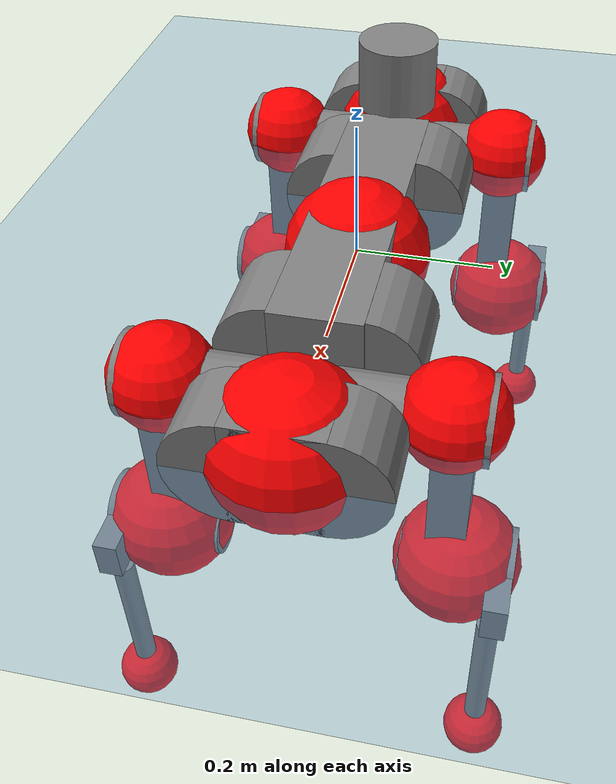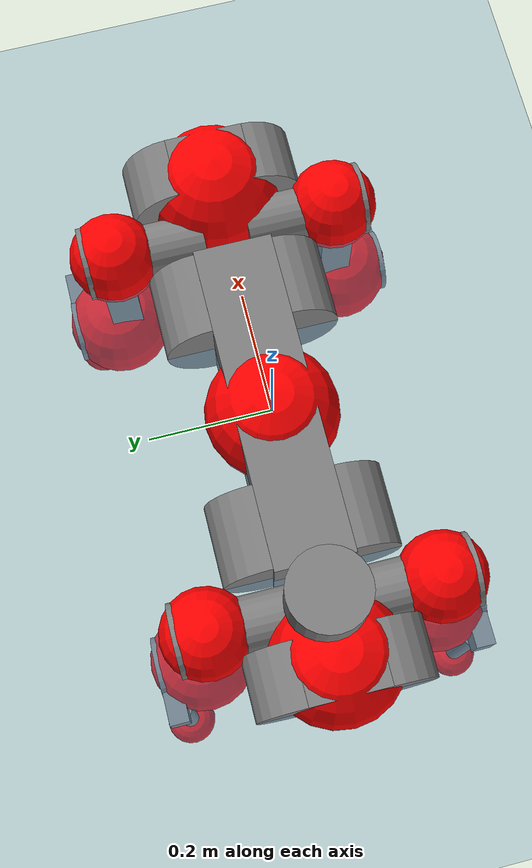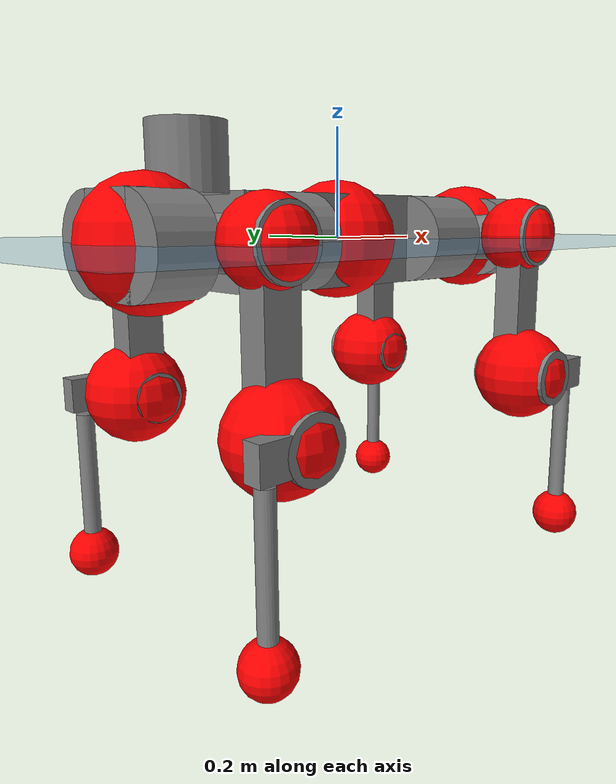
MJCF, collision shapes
<mujoco model="anymal_c">
  <compiler angle="radian" assetdir="assets" balanceinertia="true" inertiafromgeom="false"/>

  <option timestep="0.005" density="1.2" viscosity="2e-05"/>

  <size nkey="1"/>

  <visual>
    <quality shadowsize="8192"/>
    <map shadowclip="0.5"/>
  </visual>

  <default>
    <default class="/">
      <material specular="0" shininess="0.25"/>
      <geom contype="0" conaffinity="0" group="1" solref="-1000 -80"/>
      <site size="0.01 0.005 0.005" group="5"/>
      <general forcelimited="true" forcerange="-80 80" biastype="affine" gainprm="80" biasprm="0 -80 -2"/>
      <default class="anymal_c">
        <joint armature="0.01" damping="0.01" frictionloss="0.1"/>
        <default class="visual">
          <geom type="mesh" group="2"/>
          <default class="visual_zflip"/>
        </default>
        <default class="collision">
          <geom type="cylinder" group="3"/>
          <default class="foot">
            <geom size="0.03 0 0" type="sphere" condim="6" priority="1" friction="0.8 0.02 0.01" solimp="0.015 1 0.03"/>
          </default>
        </default>
      </default>
      <default class="reward_collision_sphere">
        <geom group="5" rgba="1 0 0 1"/>
      </default>
    </default>
  </default>

  <asset>
    <texture type="skybox" colorspace="auto" name="//unnamed_texture_0" builtin="gradient" rgb1="0.95 0.95 0.95" rgb2="0.95 0.95 0.95" width="100" height="600"/>
    <texture type="2d" colorspace="auto" name="texplane" builtin="checker" rgb1="0.345 0.575 0.748" rgb2="0.345 0.575 0.748" markrgb="1 1 1" width="512" height="512"/>
    <texture type="2d" colorspace="linear" name="base" file="base.png"/>
    <texture type="2d" colorspace="linear" name="top_shell" file="top_shell.png"/>
    <texture type="2d" colorspace="linear" name="bottom_shell" file="bottom_shell.png"/>
    <texture type="2d" colorspace="linear" name="remote" file="remote.png"/>
    <texture type="2d" colorspace="linear" name="hatch" file="hatch.png"/>
    <texture type="2d" colorspace="linear" name="handle" file="handle.png"/>
    <texture type="2d" colorspace="linear" name="face" file="face.png"/>
    <texture type="2d" colorspace="linear" name="battery" file="battery.png"/>
    <texture type="2d" colorspace="linear" name="lidar_cage" file="lidar_cage.png"/>
    <texture type="2d" colorspace="linear" name="depth_camera" file="depth_camera.png"/>
    <texture type="2d" colorspace="linear" name="wide_angle_camera" file="wide_angle_camera.png"/>
    <texture type="2d" colorspace="linear" name="lidar" file="lidar.png"/>
    <texture type="2d" colorspace="linear" name="drive" file="drive.png"/>
    <texture type="2d" colorspace="linear" name="hip_l" file="hip_l.png"/>
    <texture type="2d" colorspace="linear" name="shank_l" file="shank_l.png"/>
    <texture type="2d" colorspace="linear" name="foot" file="foot.png"/>
    <texture type="2d" colorspace="linear" name="thigh" file="thigh.png"/>
    <texture type="2d" colorspace="linear" name="shank_r" file="shank_r.png"/>
    <texture type="2d" colorspace="linear" name="hip_r" file="hip_r.png"/>
    <material name="MatPlane" class="/" texture="texplane" texuniform="true" texrepeat="2 2" specular="0.9" shininess="0.5"/>
    <material name="black_plastic" class="/" rgba="0.007 0.007 0.007 1"/>
    <material name="green" class="/" rgba="0.052 0.178 0.033 1"/>
    <material name="red" class="/" rgba="0.178 0.006 0.005 1"/>
    <material name="yellow" class="/" rgba="0.178 0.119 0.006 1"/>
    <material name="lwl" class="/" rgba="0.8 0.8 0.8 1"/>
    <material name="base" class="/" texture="base"/>
    <material name="top_shell" class="/" texture="top_shell"/>
    <material name="bottom_shell" class="/" texture="bottom_shell"/>
    <material name="hip_l" class="/" texture="hip_l"/>
    <material name="thigh" class="/" texture="thigh"/>
    <material name="shank_l" class="/" texture="shank_l"/>
    <material name="foot" class="/" texture="foot"/>
    <material name="hip_r" class="/" texture="hip_r"/>
    <material name="shank" class="/" texture="shank_r"/>
    <material name="hatch" class="/" texture="hatch"/>
    <material name="remote" class="/" texture="remote"/>
    <material name="handle" class="/" texture="handle"/>
    <material name="face" class="/" texture="face"/>
    <material name="depth_camera" class="/" texture="depth_camera"/>
    <material name="wide_angle_camera" class="/" texture="wide_angle_camera"/>
    <material name="battery" class="/" texture="battery"/>
    <material name="lidar_cage" class="/" texture="lidar_cage"/>
    <material name="lidar" class="/" texture="lidar"/>
    <material name="drive" class="/" texture="drive"/>
    <mesh name="base_0" class="/" file="base_0.obj"/>
    <mesh name="base_1" class="/" file="base_1.obj"/>
    <mesh name="base_2" class="/" file="base_2.obj"/>
    <mesh name="base_3" class="/" file="base_3.obj"/>
    <mesh name="base_4" class="/" file="base_4.obj"/>
    <mesh name="base_5" class="/" file="base_5.obj"/>
    <mesh name="top_shell" class="/" file="top_shell.obj"/>
    <mesh name="bottom_shell" class="/" file="bottom_shell.obj"/>
    <mesh name="remote" class="/" file="remote.obj"/>
    <mesh name="handle" class="/" file="handle.obj"/>
    <mesh name="face" class="/" file="face.obj"/>
    <mesh name="wide_angle_camera" class="/" file="wide_angle_camera.obj"/>
    <mesh name="depth_camera" class="/" file="depth_camera.obj"/>
    <mesh name="battery" class="/" file="battery.obj"/>
    <mesh name="lidar_cage" class="/" file="lidar_cage.obj"/>
    <mesh name="lidar" class="/" file="lidar.obj"/>
    <mesh name="drive" class="/" file="drive.obj"/>
    <mesh name="hip_l" class="/" file="hip_l.obj"/>
    <mesh name="thigh" class="/" file="thigh.obj"/>
    <mesh name="shank_l" class="/" file="shank_l.obj"/>
    <mesh name="foot" class="/" file="foot.obj"/>
    <mesh name="hip_r" class="/" file="hip_r.obj"/>
    <mesh name="hatch" class="/" file="hatch.obj"/>
    <mesh name="shank_r" class="/" file="shank_r.obj"/>
  </asset>

  <worldbody>
    <geom name="floor" class="/" size="100 100 0.125" type="plane" group="0" material="MatPlane"/>
    <light name="toplight_shadow" class="/" pos="0 0 5" dir="0.0990148 0.0990148 -0.990148" type="directional" ambient="0.04 0.04 0.04" diffuse="0.55 0.55 0.55" specular="0.12 0.12 0.12"/>
    <light name="toplight_fill" class="/" pos="0 0 5" dir="0.0990148 0.0990148 -0.990148" type="directional" castshadow="false" ambient="0.04 0.04 0.04" diffuse="0.3 0.3 0.3" specular="0.08 0.08 0.08"/>
    <body name="trunk" childclass="anymal_c" pos="-0.00205676 0.000444808 -0.00277687" quat="0.999999 0.00117134 -0.000350755 -7.54204e-05">
      <inertial pos="-0.000779218 0.00249731 0.0486047" quat="0.496667 0.49734 0.501645 0.504309" mass="14.6232" diaginertia="0.349202 0.289692 0.196897"/>
      <joint name="//unnamed_joint_0" type="free" armature="0" damping="0" frictionloss="0"/>
      <geom name="//unnamed_geom_1" class="visual" material="green" mesh="base_0"/>
      <geom name="//unnamed_geom_2" class="visual" material="yellow" mesh="base_1"/>
      <geom name="//unnamed_geom_3" class="visual" material="red" mesh="base_2"/>
      <geom name="//unnamed_geom_4" class="visual" material="black_plastic" mesh="base_3"/>
      <geom name="//unnamed_geom_5" class="visual" material="lwl" mesh="base_4"/>
      <geom name="//unnamed_geom_6" class="visual" material="base" mesh="base_5"/>
      <geom name="trunk_1" class="collision" size="0.263332 0.0635629 0.0817237" type="box"/>
      <geom name="trunk_2" class="collision" size="0.0817237 0.065833" pos="0.192298 0.0601831 0" quat="0.707107 0 0.707107 0"/>
      <geom name="trunk_3" class="collision" size="0.0817237 0.065833" pos="-0.192298 0.0601831 0" quat="0.707107 0 0.707107 0"/>
      <geom name="trunk_4" class="collision" size="0.0817237 0.065833" pos="0.192298 -0.0601831 0" quat="0.707107 0 0.707107 0"/>
      <geom name="trunk_5" class="collision" size="0.0817237 0.065833" pos="-0.192298 -0.0601831 0" quat="0.707107 0 0.707107 0"/>
      <geom name="//unnamed_geom_12" class="visual" material="top_shell" mesh="top_shell"/>
      <geom name="//unnamed_geom_13" class="visual" material="bottom_shell" mesh="bottom_shell"/>
      <geom name="//unnamed_geom_14" class="visual" material="remote" mesh="remote"/>
      <geom name="//unnamed_geom_15" class="visual" material="handle" mesh="handle"/>
      <geom name="//unnamed_geom_16" class="visual" pos="0.366472 0 0" quat="1 0 0 0" material="face" mesh="face"/>
      <geom name="trunk_6" class="collision" size="0.0499423 0.0635629 0.0817237" pos="0.415099 0 0" type="box"/>
      <geom name="//unnamed_geom_18" class="collision" size="0.0817237 0.0499423" pos="0.415099 0.0601831 0" quat="0.707107 0 0.707107 0"/>
      <geom name="//unnamed_geom_19" class="collision" size="0.0817237 0.0499423" pos="0.415099 -0.0601831 0" quat="0.707107 0 0.707107 0"/>
      <geom name="//unnamed_geom_20" class="visual" pos="0.408163 0 -0.0293533" quat="0.965926 0 0.258819 0" material="depth_camera" mesh="depth_camera"/>
      <geom name="//unnamed_geom_21" class="visual" pos="0.453559 0 0.0146741" material="wide_angle_camera" mesh="wide_angle_camera"/>
      <geom name="//unnamed_geom_22" class="visual_zflip" pos="-0.366472 0 0" quat="0 0 0 1" material="face" mesh="face"/>
      <geom name="trunk_7" class="collision" size="0.0499423 0.0635629 0.0817237" pos="-0.415099 0 0" quat="0 0 0 1" type="box"/>
      <geom name="//unnamed_geom_24" class="collision" size="0.0817237 0.0499423" pos="-0.415099 -0.0601831 0" quat="0 -0.707107 0 0.707107"/>
      <geom name="//unnamed_geom_25" class="collision" size="0.0817237 0.0499423" pos="-0.415099 0.0601831 0" quat="0 -0.707107 0 0.707107"/>
      <geom name="//unnamed_geom_26" class="visual" pos="-0.408163 0 -0.0293533" quat="0 -0.258819 0 0.965926" material="depth_camera" mesh="depth_camera"/>
      <geom name="//unnamed_geom_27" class="visual_zflip" pos="-0.453559 0 0.0146741" quat="0 0 0 1" material="wide_angle_camera" mesh="wide_angle_camera"/>
      <geom name="//unnamed_geom_28" class="visual" material="battery" mesh="battery"/>
      <geom name="//unnamed_geom_29" class="visual" pos="0 0.0654213 0.0277454" quat="0.683013 -0.183013 0.183013 0.683013" material="depth_camera" mesh="depth_camera"/>
      <geom name="//unnamed_geom_30" class="visual" pos="0 -0.0654213 0.0277454" quat="0.683013 0.183013 0.183013 -0.683013" material="depth_camera" mesh="depth_camera"/>
      <geom name="//unnamed_geom_31" class="visual" pos="-0.321823 0 0.0720473" quat="1 0 0 0" material="lidar_cage" mesh="lidar_cage"/>
      <geom name="trunk_8" class="collision" size="0.0635629 0.0544825" pos="-0.321823 0 0.130861"/>
      <geom name="//unnamed_geom_33" class="visual" pos="-0.321823 -9.57505e-06 0.139389" quat="0.707107 0 0 -0.707107" material="lidar" mesh="lidar"/>
      <geom name="//unnamed_geom_34" class="visual" pos="0.265151 0.0894576 -2.07824e-09" quat="0.258819 0.965926 0 0" material="drive" mesh="drive"/>
      <geom name="//unnamed_geom_35" class="visual" pos="0.265151 -0.0894576 2.07824e-09" quat="0.258819 -0.965926 0 0" material="drive" mesh="drive"/>
      <geom name="//unnamed_geom_36" class="visual" pos="-0.265151 0.0894576 2.07824e-09" quat="0 0 0.965926 -0.258819" material="drive" mesh="drive"/>
      <geom name="//unnamed_geom_37" class="visual" pos="-0.265151 -0.0894576 -2.07824e-09" quat="0 0 -0.965926 -0.258819" material="drive" mesh="drive"/>
      <geom name="//unnamed_geom_38" class="visual" pos="0.102559 0 0.0715572" quat="1 0 0 0" material="hatch" mesh="hatch"/>
      <geom name="//unnamed_geom_39" class="reward_collision_sphere" size="0.108965"/>
      <geom name="//unnamed_geom_40" class="reward_collision_sphere" size="0.108965" pos="0.397858 0 0"/>
      <geom name="//unnamed_geom_41" class="reward_collision_sphere" size="0.108965" pos="-0.397858 0 0"/>
      <site name="imu" pos="0.233453 0.0136879 0.0324285" size="0.00908041"/>
      <camera name="track" pos="0 -1.71952 0" quat="0.707107 0.707107 0 0" mode="trackcom"/>
      <camera name="ego_camera" pos="0.397858 0 -0.0392094" quat="-0.5 -0.5 0.5 0.5"/>
      <body name="LF_HIP" pos="0.264885 0.088826 -0.00109806" quat="0.258548 0.965998 -0.000130206 -0.000233726">
        <inertial pos="0.0474239 -0.0135533 -0.00990617" quat="-0.132803 0.71168 -0.127101 0.678026" mass="2.0815" diaginertia="0.0031566 0.00231804 0.00308129"/>
        <joint name="LF_HAA" pos="0 0 0" axis="0.999883 -0.00928562 0.0121314" range="-0.715299 0.484147" armature="0.00994127" damping="0.00649364" frictionloss="0.0879745"/>
        <geom name="//unnamed_geom_42" class="visual" pos="0 -0.000122254 2.00801e-05" quat="0.258819 -0.965926 0 0" material="hip_l" mesh="hip_l"/>
        <geom name="//unnamed_geom_43" class="visual" pos="0.0529594 -0.0638935 -0.03778" quat="0.183013 -0.683013 0.683013 0.183013" material="drive" mesh="drive"/>
        <geom name="//unnamed_geom_44" class="collision" size="0.0454021 0.0635629" pos="0.0529594 -0.0102825 -0.00676852" quat="-0.353553 -0.612372 0.612372 -0.353553"/>
        <body name="LF_THIGH" pos="0.0533551 -0.0631558 -0.0451823" quat="0.182675 -0.683125 0.682968 0.183099">
          <inertial pos="0.0283999 -5.957e-05 -0.239476" quat="0.993705 0.0013333 -0.0720637 0.0857685" mass="2.24473" diaginertia="0.0163292 0.0134095 0.00379757"/>
          <joint name="LF_HFE" pos="0 0 0" axis="0.999983 -0.000267533 0.00588501" stiffness="0.0136215" range="-3.13725 3.12322" armature="0.00789153" damping="0.00982448" frictionloss="0.0904401"/>
          <geom name="//unnamed_geom_45" class="visual" pos="0.000484904 7.64096e-07 0" quat="0.707107 0 0 -0.707107" material="thigh" mesh="thigh"/>
          <geom name="//unnamed_geom_46" class="collision" size="0.0590227 0.0363216" pos="0.0353652 0 0" quat="0.5 0.5 -0.5 -0.5"/>
          <geom name="//unnamed_geom_47" class="collision" size="0.0340515 0.0272412 0.128319" pos="0.0265239 0 -0.138521" quat="0.707107 0 0 -0.707107" type="box"/>
          <geom name="//unnamed_geom_48" class="visual" pos="0.0886782 0 -0.279367" quat="1 0 0 0" material="drive" mesh="drive"/>
          <geom name="//unnamed_geom_49" class="collision" size="0.0454021 0.0635629" pos="0.0267891 0 -0.279367" quat="0.707107 0 0.707107 0"/>
          <geom name="//unnamed_geom_50" class="reward_collision_sphere" size="0.0726433" pos="0.0221032 0 0"/>
          <body name="LF_SHANK" pos="0.0871621 -0.000707233 -0.277292" quat="1 0.000102569 5.44109e-05 5.63232e-05">
            <inertial pos="0.00270838 -0.0552782 -0.0768838" quat="0.992886 -0.116514 -0.00317366 -0.0243187" mass="0.437141" diaginertia="0.00558363 0.00420869 0.00100883"/>
            <joint name="LF_KFE" pos="0 0 0" axis="0.999999 0.00148344 -0.000417315" stiffness="0.00172035" range="-3.09429 3.12568" armature="0.00902015" damping="0.008815" frictionloss="0.0901446"/>
            <geom name="//unnamed_geom_51" class="visual" pos="0.000158117 0.000843086 0" quat="0.707107 0 0 -0.707107" material="shank_l" mesh="shank_l"/>
            <geom name="LF_kfe_act" class="collision" size="0.0544825 0.0181608" pos="0.0176826 0 0" quat="0.5 0.5 -0.5 -0.5"/>
            <geom name="//unnamed_geom_53" class="collision" size="0.0522115 0.0306464 0.0172528" pos="0.0176826 -0.0494352 0" quat="0.5 0.5 -0.5 -0.5" type="box"/>
            <geom name="//unnamed_geom_54" class="visual" pos="0.0115379 -0.075344 -0.33129" quat="0.382683 0 0 -0.92388" material="foot" mesh="foot"/>
            <geom name="LF_calf" class="collision" size="0.0158907 0.128263" pos="0.0115379 -0.0756157 -0.165645" quat="0.707107 0 0 -0.707107"/>
            <geom name="LF_foot" class="foot" size="0.0279581" pos="0.0115379 -0.0756157 -0.309235" quat="0.707107 0 0 -0.707107"/>
            <geom name="//unnamed_geom_57" class="reward_collision_sphere" size="0.0908041" pos="-0.0442065 0 0"/>
            <geom name="//unnamed_geom_58" class="reward_collision_sphere" size="0.0454021" pos="0.0115379 -0.0756157 -0.309235"/>
            <site name="LF_foot" class="foot" pos="0.0115379 -0.0756157 -0.309235" quat="0.707107 0 0 -0.707107" size="0.00908041"/>
          </body>
        </body>
      </body>
      <body name="RF_HIP" pos="0.268477 -0.0868402 0.000226659" quat="0.258765 -0.96594 0.000117733 -0.000363434">
        <inertial pos="0.0483256 0.0112595 -0.00898745" quat="0.134777 0.679242 0.12796 0.709994" mass="2.06395" diaginertia="0.00304717 0.0023836 0.00300815"/>
        <joint name="RF_HAA" pos="0 0 0" axis="0.999999 -0.00164975 -0.000416268" range="-0.453773 0.706254" armature="0.00893287" damping="0.0107955" frictionloss="0.102042"/>
        <geom name="//unnamed_geom_59" class="visual" pos="0 0.000122253 2.008e-05" quat="0.258819 0.965926 0 0" material="hip_r" mesh="hip_r"/>
        <geom name="//unnamed_geom_60" class="visual" pos="0.0529594 0.0638935 -0.03778" quat="0.183013 0.683013 0.683013 -0.183013" material="drive" mesh="drive"/>
        <geom name="//unnamed_geom_61" class="collision" size="0.0454021 0.0635629" pos="0.0529594 0.0102825 -0.00676852" quat="-0.353553 0.612372 0.612372 0.353553"/>
        <body name="RF_THIGH" pos="0.0560358 0.0627805 -0.0430985" quat="0.182795 0.683432 0.682559 -0.183358">
          <inertial pos="0.0268312 0.000159039 -0.240377" quat="0.991929 -0.00489911 -0.0827937 0.0959021" mass="2.36147" diaginertia="0.0157535 0.0140226 0.00378009"/>
          <joint name="RF_HFE" pos="0 0 0" axis="0.999961 -0.000914686 -0.00879171" stiffness="0.00683469" range="-3.13913 3.16867" armature="0.00848459" damping="0.0095047" frictionloss="0.0978172"/>
          <geom name="//unnamed_geom_62" class="visual" pos="0.000484904 7.64096e-07 0" quat="0.707107 0 0 -0.707107" material="thigh" mesh="thigh"/>
          <geom name="//unnamed_geom_63" class="collision" size="0.0590227 0.0363216" pos="0.0353652 0 0" quat="0.5 0.5 0.5 0.5"/>
          <geom name="//unnamed_geom_64" class="collision" size="0.0340515 0.0272412 0.128319" pos="0.0265239 0 -0.138521" quat="0.707107 0 0 0.707107" type="box"/>
          <geom name="//unnamed_geom_65" class="visual" pos="0.0886782 0 -0.279367" quat="1 0 0 0" material="drive" mesh="drive"/>
          <geom name="//unnamed_geom_66" class="collision" size="0.0454021 0.0635629" pos="0.0267891 0 -0.279367" quat="0.707107 0 0.707107 0"/>
          <geom name="//unnamed_geom_67" class="reward_collision_sphere" size="0.0726433" pos="0.0221032 0 0"/>
          <body name="RF_SHANK" pos="0.088811 -0.00041657 -0.277853" quat="1 9.10658e-05 3.48841e-05 0.000246385">
            <inertial pos="0.00651314 0.0516199 -0.0805821" quat="0.991495 0.1253 -0.000338104 0.0351646" mass="0.439949" diaginertia="0.00579074 0.00436162 0.00102825"/>
            <joint name="RF_KFE" pos="0 0 0" axis="0.999993 0.00257819 0.00258051" stiffness="0.00100846" range="-3.15508 3.08225" armature="0.00992498" damping="0.00812608" frictionloss="0.0899835"/>
            <geom name="//unnamed_geom_68" class="visual" pos="0.000158116 -0.000843085 0" quat="0.707107 0 0 0.707107" material="shank" mesh="shank_r"/>
            <geom name="RF_kfe_act" class="collision" size="0.0544825 0.0181608" pos="0.0176826 0 0" quat="0.5 0.5 0.5 0.5"/>
            <geom name="//unnamed_geom_70" class="collision" size="0.0522115 0.0306464 0.0172528" pos="0.0176826 0.0494352 0" quat="0.5 0.5 0.5 0.5" type="box"/>
            <geom name="//unnamed_geom_71" class="visual" pos="0.0115379 0.075344 -0.33129" quat="0.382683 0 0 0.92388" material="foot" mesh="foot"/>
            <geom name="RF_calf" class="collision" size="0.0158907 0.128263" pos="0.0115379 0.0756157 -0.165645" quat="0.707107 0 0 0.707107"/>
            <geom name="RF_foot" class="foot" size="0.0294925" pos="0.0115379 0.0756157 -0.309235" quat="0.707107 0 0 0.707107"/>
            <geom name="//unnamed_geom_74" class="reward_collision_sphere" size="0.0908041" pos="-0.0442065 0 0"/>
            <geom name="//unnamed_geom_75" class="reward_collision_sphere" size="0.0454021" pos="0.0115379 0.0756157 -0.309235"/>
            <site name="RF_foot" class="foot" pos="0.0115379 0.0756157 -0.309235" quat="0.707107 0 0 0.707107" size="0.00908041"/>
          </body>
        </body>
      </body>
      <body name="LH_HIP" pos="-0.264875 0.0873588 0.000363" quat="-0.000346873 -0.000412109 0.965946 -0.258745">
        <inertial pos="0.0497305 0.0133868 -0.00850229" quat="0.136502 0.67855 0.128402 0.710247" mass="2.08697" diaginertia="0.00319496 0.0022425 0.00295269"/>
        <joint name="LH_HAA" pos="0 0 0" axis="0.999998 0.00157676 0.00136478" range="-0.510648 0.729107" armature="0.00911967" damping="0" frictionloss="0.0926647"/>
        <geom name="//unnamed_geom_76" class="visual" pos="0 0.000122253 2.008e-05" quat="-0.258819 -0.965926 0 0" material="hip_r" mesh="hip_r"/>
        <geom name="//unnamed_geom_77" class="visual" pos="0.0529594 0.0638935 -0.03778" quat="0.183013 0.683013 0.683013 -0.183013" material="drive" mesh="drive"/>
        <geom name="//unnamed_geom_78" class="collision" size="0.0454021 0.0635629" pos="0.0529594 0.0102825 -0.00676852" quat="-0.353553 0.612372 0.612372 0.353553"/>
        <body name="LH_THIGH" pos="0.0513075 0.061387 -0.0410438" quat="0.182924 0.683016 0.68302 -0.183064">
          <inertial pos="0.0266659 0.000419267 -0.239508" quat="0.993035 -0.00557254 -0.0799569 0.0863601" mass="2.34572" diaginertia="0.0169269 0.0143437 0.00390243"/>
          <joint name="LH_HFE" pos="0 0 0" axis="0.99999 0.000558395 0.00434695" range="-3.14925 3.11199" armature="0.0102265" damping="0.0194052" frictionloss="0.0942275"/>
          <geom name="//unnamed_geom_79" class="visual" pos="0.000484904 7.64096e-07 0" quat="0.707107 0 0 -0.707107" material="thigh" mesh="thigh"/>
          <geom name="//unnamed_geom_80" class="collision" size="0.0590227 0.0363216" pos="0.0353652 0 0" quat="0.5 0.5 -0.5 -0.5"/>
          <geom name="//unnamed_geom_81" class="collision" size="0.0340515 0.0272412 0.128319" pos="0.0265239 0 -0.138521" quat="0.707107 0 0 -0.707107" type="box"/>
          <geom name="//unnamed_geom_82" class="visual" pos="0.0886782 0 -0.279367" quat="1 0 0 0" material="drive" mesh="drive"/>
          <geom name="//unnamed_geom_83" class="collision" size="0.0454021 0.0635629" pos="0.0267891 0 -0.279367" quat="0.707107 0 0.707107 0"/>
          <geom name="//unnamed_geom_84" class="reward_collision_sphere" size="0.0726433" pos="0.0221032 0 0"/>
          <body name="LH_SHANK" pos="0.086604 0.0019593 -0.281095" quat="1 -0.000109094 -0.000180621 -0.000211996">
            <inertial pos="0.00751845 0.0499832 -0.0768188" quat="0.992912 0.116902 -0.00620438 0.0205417" mass="0.431677" diaginertia="0.00547637 0.0045005 0.000983935"/>
            <joint name="LH_KFE" pos="0 0 0" axis="0.999894 0.00407145 -0.0139468" stiffness="0.00642725" range="-3.09756 3.13986" armature="0.00918044" damping="0.0117763" frictionloss="0.102714"/>
            <geom name="//unnamed_geom_85" class="visual" pos="0.000158116 -0.000843085 0" quat="-0.707107 0 0 -0.707107" material="shank" mesh="shank_r"/>
            <geom name="LH_kfe_act" class="collision" size="0.0544825 0.0181608" pos="0.0176826 0 0" quat="0.5 0.5 -0.5 -0.5"/>
            <geom name="//unnamed_geom_87" class="collision" size="0.0522115 0.0306464 0.0172528" pos="0.0176826 0.0494352 0" quat="0.5 0.5 -0.5 -0.5" type="box"/>
            <geom name="//unnamed_geom_88" class="visual" pos="0.0115379 0.075344 -0.33129" quat="-0.382683 0 0 -0.92388" material="foot" mesh="foot"/>
            <geom name="LH_calf" class="collision" size="0.0158907 0.128263" pos="0.0115379 0.0756157 -0.165645" quat="0.707107 0 0 -0.707107"/>
            <geom name="LH_foot" class="foot" size="0.0313471" pos="0.0115379 0.0756157 -0.309235" quat="0.707107 0 0 -0.707107"/>
            <geom name="//unnamed_geom_91" class="reward_collision_sphere" size="0.0908041" pos="-0.0442065 0 0"/>
            <geom name="//unnamed_geom_92" class="reward_collision_sphere" size="0.0454021" pos="0.0115379 0.0756157 -0.309235"/>
            <site name="LH_foot" class="foot" pos="0.0115379 0.0756157 -0.309235" quat="0.707107 0 0 -0.707107" size="0.00908041"/>
          </body>
        </body>
      </body>
      <body name="RH_HIP" pos="-0.265114 -0.0924843 0.000806675" quat="-0.000839771 -9.57404e-05 -0.966089 -0.258209">
        <inertial pos="0.0492549 -0.0126571 -0.0103736" quat="-0.127873 0.709778 -0.135984 0.679244" mass="2.17613" diaginertia="0.00316224 0.00229962 0.00300564"/>
        <joint name="RH_HAA" pos="0 0 0" axis="0.999954 0.00756619 -0.00595775" range="-0.673857 0.464544" armature="0.00789842" damping="0.00422452" frictionloss="0.102524"/>
        <geom name="//unnamed_geom_93" class="visual" pos="0 -0.000122254 2.00801e-05" quat="-0.258819 0.965926 0 0" material="hip_l" mesh="hip_l"/>
        <geom name="//unnamed_geom_94" class="visual" pos="0.0529594 -0.0638935 -0.03778" quat="-0.183013 0.683013 -0.683013 -0.183013" material="drive" mesh="drive"/>
        <geom name="//unnamed_geom_95" class="collision" size="0.0454021 0.0635629" pos="0.0529594 -0.0102825 -0.00676852" quat="0.353553 0.612372 -0.612372 0.353553"/>
        <body name="RH_THIGH" pos="0.0542309 -0.0610398 -0.0408924" quat="-0.183125 0.682943 -0.683008 -0.183179">
          <inertial pos="0.0249531 0.00201114 -0.240414" quat="0.99336 -0.00479979 -0.0791575 0.0833485" mass="2.22592" diaginertia="0.0166462 0.0138776 0.0037909"/>
          <joint name="RH_HFE" pos="0 0 0" axis="0.999897 -0.0111621 0.00906402" stiffness="0.00394763" range="-3.13857 3.15042" armature="0.00876898" damping="0.00597772" frictionloss="0.0853687"/>
          <geom name="//unnamed_geom_96" class="visual" pos="0.000484904 7.64096e-07 0" quat="0.707107 0 0 -0.707107" material="thigh" mesh="thigh"/>
          <geom name="//unnamed_geom_97" class="collision" size="0.0590227 0.0363216" pos="0.0353652 0 0" quat="0.5 0.5 0.5 0.5"/>
          <geom name="//unnamed_geom_98" class="collision" size="0.0340515 0.0272412 0.128319" pos="0.0265239 0 -0.138521" quat="0.707107 0 0 0.707107" type="box"/>
          <geom name="//unnamed_geom_99" class="visual" pos="0.0886782 0 -0.279367" quat="1 0 0 0" material="drive" mesh="drive"/>
          <geom name="//unnamed_geom_100" class="collision" size="0.0454021 0.0635629" pos="0.0267891 0 -0.279367" quat="0.707107 0 0.707107 0"/>
          <geom name="//unnamed_geom_101" class="reward_collision_sphere" size="0.0726433" pos="0.0221032 0 0"/>
          <body name="RH_SHANK" pos="0.0881624 -0.000425484 -0.279775" quat="1 0.000177593 0.000376055 0.000107068">
            <inertial pos="0.00752226 -0.0525571 -0.0795389" quat="0.99319 -0.114148 -0.00185218 -0.023234" mass="0.418265" diaginertia="0.00523808 0.00424071 0.000974155"/>
            <joint name="RH_KFE" pos="0 0 0" axis="0.999954 0.00421084 -0.00866712" range="-3.12406 3.18827" armature="0.00793687" damping="0.0132898" frictionloss="0.0942486"/>
            <geom name="//unnamed_geom_102" class="visual" pos="0.000158117 0.000843086 0" quat="0.707107 0 0 -0.707107" material="shank_l" mesh="shank_l"/>
            <geom name="RH_kfe_act" class="collision" size="0.0544825 0.0181608" pos="0.0176826 0 0" quat="0.5 0.5 0.5 0.5"/>
            <geom name="//unnamed_geom_104" class="collision" size="0.0522115 0.0306464 0.0172528" pos="0.0176826 -0.0494352 0" quat="0.5 0.5 0.5 0.5" type="box"/>
            <geom name="//unnamed_geom_105" class="visual" pos="0.0115379 -0.075344 -0.33129" quat="0.382683 0 0 -0.92388" material="foot" mesh="foot"/>
            <geom name="RH_calf" class="collision" size="0.0158907 0.128263" pos="0.0115379 -0.0756157 -0.165645" quat="0.707107 0 0 0.707107"/>
            <geom name="RH_foot" class="foot" size="0.0217155" pos="0.0115379 -0.0756157 -0.309235" quat="0.707107 0 0 0.707107"/>
            <geom name="//unnamed_geom_108" class="reward_collision_sphere" size="0.0908041" pos="-0.0442065 0 0"/>
            <geom name="//unnamed_geom_109" class="reward_collision_sphere" size="0.0454021" pos="0.0115379 -0.0756157 -0.309235"/>
            <site name="RH_foot" class="foot" pos="0.0115379 -0.0756157 -0.309235" quat="0.707107 0 0 0.707107" size="0.00908041"/>
          </body>
        </body>
      </body>
    </body>
  </worldbody>

  <contact>
    <pair class="/" geom1="floor" geom2="LF_foot" name="//unnamed_contact_0"/>
    <pair class="/" geom1="floor" geom2="RF_foot" name="//unnamed_contact_1"/>
    <pair class="/" geom1="floor" geom2="LH_foot" name="//unnamed_contact_2"/>
    <pair class="/" geom1="floor" geom2="RH_foot" name="//unnamed_contact_3"/>
  </contact>

  <actuator>
    <general name="LF_HAA" class="/" joint="LF_HAA" forcerange="-78.5845 78.5845" gainprm="66.1555" biasprm="0 -66.1555 -1.81441"/>
    <general name="LF_HFE" class="/" joint="LF_HFE" forcerange="-75.0582 75.0582" gainprm="66.1555" biasprm="0 -66.1555 -1.81441"/>
    <general name="LF_KFE" class="/" joint="LF_KFE" forcerange="-70.8728 70.8728" gainprm="66.1555" biasprm="0 -66.1555 -1.81441"/>
    <general name="RF_HAA" class="/" joint="RF_HAA" forcerange="-73.2908 73.2908" gainprm="66.1555" biasprm="0 -66.1555 -1.81441"/>
    <general name="RF_HFE" class="/" joint="RF_HFE" forcerange="-80.9183 80.9183" gainprm="66.1555" biasprm="0 -66.1555 -1.81441"/>
    <general name="RF_KFE" class="/" joint="RF_KFE" forcerange="-68.0366 68.0366" gainprm="66.1555" biasprm="0 -66.1555 -1.81441"/>
    <general name="LH_HAA" class="/" joint="LH_HAA" forcerange="-72.9704 72.9704" gainprm="66.1555" biasprm="0 -66.1555 -1.81441"/>
    <general name="LH_HFE" class="/" joint="LH_HFE" forcerange="-80.962 80.962" gainprm="66.1555" biasprm="0 -66.1555 -1.81441"/>
    <general name="LH_KFE" class="/" joint="LH_KFE" forcerange="-71.9731 71.9731" gainprm="66.1555" biasprm="0 -66.1555 -1.81441"/>
    <general name="RH_HAA" class="/" joint="RH_HAA" forcerange="-71.7126 71.7126" gainprm="66.1555" biasprm="0 -66.1555 -1.81441"/>
    <general name="RH_HFE" class="/" joint="RH_HFE" forcerange="-75.4635 75.4635" gainprm="66.1555" biasprm="0 -66.1555 -1.81441"/>
    <general name="RH_KFE" class="/" joint="RH_KFE" forcerange="-69.0771 69.0771" gainprm="66.1555" biasprm="0 -66.1555 -1.81441"/>
  </actuator>

  <sensor>
    <gyro site="imu" name="imu_angular_velocity"/>
    <velocimeter site="imu" name="imu_linear_velocity"/>
    <framelinvel objtype="site" objname="LF_foot" name="LF_foot_global_linear_velocity"/>
    <framelinvel objtype="site" objname="RF_foot" name="RF_foot_global_linear_velocity"/>
    <framelinvel objtype="site" objname="LH_foot" name="LH_foot_global_linear_velocity"/>
    <framelinvel objtype="site" objname="RH_foot" name="RH_foot_global_linear_velocity"/>
  </sensor>

  <keyframe>
    <key name="home" qpos="0 0 0.55 1 0 0 0 0 0.4 -0.8 0 -0.4 0.8 0 -0.4 0.8 0 0.4 -0.8"/>
  </keyframe>
</mujoco>
